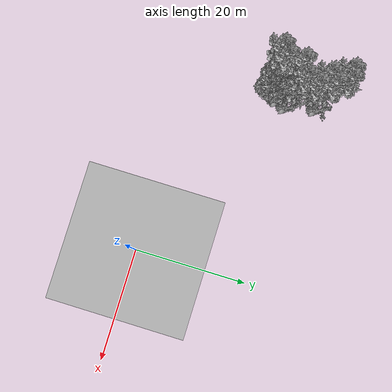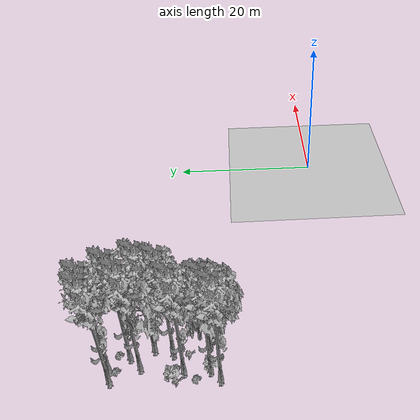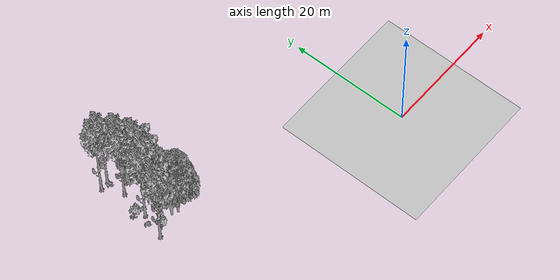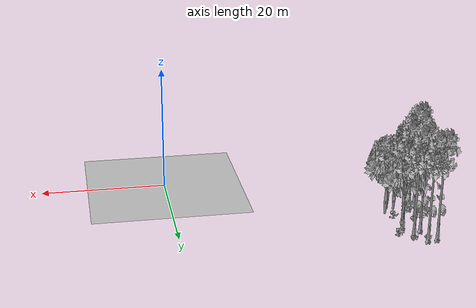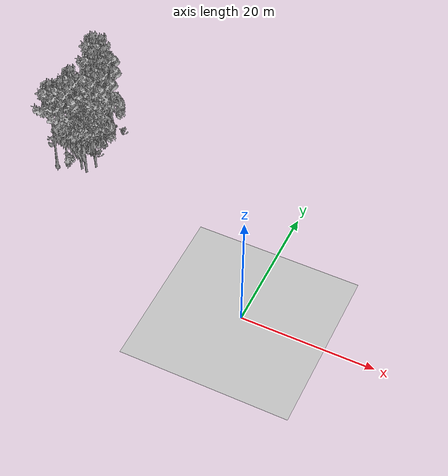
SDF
<sdf version="1.7">
 <world name="default">
  <model name="ground_plane">
   <static>1</static>
   <link name="link">
    <collision name="collision">
     <pose>-50 0 0 0 -0 0</pose>
     <geometry><plane><normal>0 0 1</normal><size>80 80</size></plane></geometry>
     <surface><contact><ode><min_depth>0.01</min_depth><max_vel>0</max_vel></ode></contact></surface>
    </collision>
    <visual name="grass">
     <cast_shadows>0</cast_shadows>
     <geometry>
      <mesh>
       <scale>0.46714285714285714 0.46714285714285714 0.1</scale>
       <uri>file://grass_plane/meshes/grass_plane.dae</uri>
      </mesh>
     </geometry>
    </visual>
   </link>
  </model>
  <model name="Tree 42">
   <static>1</static>
   <pose>-38.2199390331694 14.145118504597612 0 1.57079 -0 0</pose>
   <link name="link">
    <collision name="collision">
     <geometry><mesh><scale>3.5 5 3.5</scale><uri>model://tree_9/meshes/tree_9.obj</uri></mesh></geometry>
    </collision>
    <visual name="visual">
     <geometry><mesh><scale>3.5 5 3.5</scale><uri>model://tree_9/meshes/tree_9.obj</uri></mesh></geometry>
    </visual>
   </link>
  </model>
  <model name="Tree 48">
   <static>1</static>
   <pose>-34.70619468903686 24.176732628721012 0 1.57079 -0 0</pose>
   <link name="link">
    <collision name="collision">
     <geometry><mesh><scale>3.5 5 3.5</scale><uri>model://tree_9/meshes/tree_9.obj</uri></mesh></geometry>
    </collision>
    <visual name="visual">
     <geometry><mesh><scale>3.5 5 3.5</scale><uri>model://tree_9/meshes/tree_9.obj</uri></mesh></geometry>
    </visual>
   </link>
  </model>
  <model name="Tree 149">
   <static>1</static>
   <pose>-33.85662618540042 21.496195428472248 0 1.57079 -0 0</pose>
   <link name="link">
    <collision name="collision">
     <geometry><mesh><scale>3.5 5 3.5</scale><uri>model://tree_2/meshes/tree_2.obj</uri></mesh></geometry>
    </collision>
    <visual name="visual">
     <geometry><mesh><scale>3.5 5 3.5</scale><uri>model://tree_2/meshes/tree_2.obj</uri></mesh></geometry>
    </visual>
   </link>
  </model>
  <model name="Tree 185">
   <static>1</static>
   <pose>-34.52892205460867 15.205348502977216 0 1.57079 -0 0</pose>
   <link name="link">
    <collision name="collision">
     <geometry><mesh><scale>3.5 5 3.5</scale><uri>model://tree_2/meshes/tree_2.obj</uri></mesh></geometry>
    </collision>
    <visual name="visual">
     <geometry><mesh><scale>3.5 5 3.5</scale><uri>model://tree_2/meshes/tree_2.obj</uri></mesh></geometry>
    </visual>
   </link>
  </model>
  <model name="Tree 243">
   <static>1</static>
   <pose>-36.9620809128442 18.14443776985523 0 1.57079 -0 0</pose>
   <link name="link">
    <collision name="collision">
     <geometry><mesh><scale>3.5 5 3.5</scale><uri>model://tree_9/meshes/tree_9.obj</uri></mesh></geometry>
    </collision>
    <visual name="visual">
     <geometry><mesh><scale>3.5 5 3.5</scale><uri>model://tree_9/meshes/tree_9.obj</uri></mesh></geometry>
    </visual>
   </link>
  </model>
  <model name="Tree 245">
   <static>1</static>
   <pose>-32.75634775548255 16.502004955431076 0 1.57079 -0 0</pose>
   <link name="link">
    <collision name="collision">
     <geometry><mesh><scale>3.5 5 3.5</scale><uri>model://tree_2/meshes/tree_2.obj</uri></mesh></geometry>
    </collision>
    <visual name="visual">
     <geometry><mesh><scale>3.5 5 3.5</scale><uri>model://tree_2/meshes/tree_2.obj</uri></mesh></geometry>
    </visual>
   </link>
  </model>
  <model name="Tree 251">
   <static>1</static>
   <pose>-36.16616795311187 26.302607093363207 0 1.57079 -0 0</pose>
   <link name="link">
    <collision name="collision">
     <geometry><mesh><scale>3.5 5 3.5</scale><uri>model://tree_9/meshes/tree_9.obj</uri></mesh></geometry>
    </collision>
    <visual name="visual">
     <geometry><mesh><scale>3.5 5 3.5</scale><uri>model://tree_9/meshes/tree_9.obj</uri></mesh></geometry>
    </visual>
   </link>
  </model>
  <model name="Tree 372">
   <static>1</static>
   <pose>-37.007035276775056 15.246234954153877 0 1.57079 -0 0</pose>
   <link name="link">
    <collision name="collision">
     <geometry><mesh><scale>3.5 5 3.5</scale><uri>model://tree_9/meshes/tree_9.obj</uri></mesh></geometry>
    </collision>
    <visual name="visual">
     <geometry><mesh><scale>3.5 5 3.5</scale><uri>model://tree_9/meshes/tree_9.obj</uri></mesh></geometry>
    </visual>
   </link>
  </model>
  <model name="Tree 411">
   <static>1</static>
   <pose>-36.147518428202474 22.92240803040211 0 1.57079 -0 0</pose>
   <link name="link">
    <collision name="collision">
     <geometry><mesh><scale>3.5 5 3.5</scale><uri>model://tree_9/meshes/tree_9.obj</uri></mesh></geometry>
    </collision>
    <visual name="visual">
     <geometry><mesh><scale>3.5 5 3.5</scale><uri>model://tree_9/meshes/tree_9.obj</uri></mesh></geometry>
    </visual>
   </link>
  </model>
  <model name="Tree 464">
   <static>1</static>
   <pose>-33.83635158160841 21.537578572446414 0 1.57079 -0 0</pose>
   <link name="link">
    <collision name="collision">
     <geometry><mesh><scale>3.5 5 3.5</scale><uri>model://tree_9/meshes/tree_9.obj</uri></mesh></geometry>
    </collision>
    <visual name="visual">
     <geometry><mesh><scale>3.5 5 3.5</scale><uri>model://tree_9/meshes/tree_9.obj</uri></mesh></geometry>
    </visual>
   </link>
  </model>
  <model name="Tree 497">
   <static>1</static>
   <pose>-37.65976335400366 26.078009280690623 0 1.57079 -0 0</pose>
   <link name="link">
    <collision name="collision">
     <geometry><mesh><scale>3.5 5 3.5</scale><uri>model://tree_9/meshes/tree_9.obj</uri></mesh></geometry>
    </collision>
    <visual name="visual">
     <geometry><mesh><scale>3.5 5 3.5</scale><uri>model://tree_9/meshes/tree_9.obj</uri></mesh></geometry>
    </visual>
   </link>
  </model>
  <model name="Tree 523">
   <static>1</static>
   <pose>-34.56488373370526 19.407524779714016 0 1.57079 -0 0</pose>
   <link name="link">
    <collision name="collision">
     <geometry><mesh><scale>3.5 5 3.5</scale><uri>model://tree_9/meshes/tree_9.obj</uri></mesh></geometry>
    </collision>
    <visual name="visual">
     <geometry><mesh><scale>3.5 5 3.5</scale><uri>model://tree_9/meshes/tree_9.obj</uri></mesh></geometry>
    </visual>
   </link>
  </model>
  <model name="Tree 559">
   <static>1</static>
   <pose>-33.53426303545006 14.874545428326478 0 1.57079 -0 0</pose>
   <link name="link">
    <collision name="collision">
     <geometry><mesh><scale>3.5 5 3.5</scale><uri>model://tree_2/meshes/tree_2.obj</uri></mesh></geometry>
    </collision>
    <visual name="visual">
     <geometry><mesh><scale>3.5 5 3.5</scale><uri>model://tree_2/meshes/tree_2.obj</uri></mesh></geometry>
    </visual>
   </link>
  </model>
  <model name="Bush 10">
   <static>1</static>
   <pose>-35.39926072817441 17.67277241986818 0 1.57079 -0 0</pose>
   <link name="link">
    <collision name="collision">
     <geometry><mesh><scale>2 2 2</scale><uri>model://bush_5/meshes/bush_5.obj</uri></mesh></geometry>
     <surface><contact><collide_without_contact>false</collide_without_contact></contact></surface>
    </collision>
    <visual name="visual">
     <geometry><mesh><scale>2 2 2</scale><uri>model://bush_5/meshes/bush_5.obj</uri></mesh></geometry>
    </visual>
   </link>
  </model>
  <model name="Bush 120">
   <static>1</static>
   <pose>-36.50737771172156 19.020649857755444 0 1.57079 -0 0</pose>
   <link name="link">
    <collision name="collision">
     <geometry><mesh><scale>2 2 2</scale><uri>model://bush_2/meshes/bush_2.obj</uri></mesh></geometry>
     <surface><contact><collide_without_contact>false</collide_without_contact></contact></surface>
    </collision>
    <visual name="visual">
     <geometry><mesh><scale>2 2 2</scale><uri>model://bush_2/meshes/bush_2.obj</uri></mesh></geometry>
    </visual>
   </link>
  </model>
  <model name="Bush 330">
   <static>1</static>
   <pose>-37.614152037362004 19.31915807729264 0 1.57079 -0 0</pose>
   <link name="link">
    <collision name="collision">
     <geometry><mesh><scale>2 2 2</scale><uri>model://bush_1/meshes/bush_1.obj</uri></mesh></geometry>
     <surface><contact><collide_without_contact>false</collide_without_contact></contact></surface>
    </collision>
    <visual name="visual">
     <geometry><mesh><scale>2 2 2</scale><uri>model://bush_1/meshes/bush_1.obj</uri></mesh></geometry>
    </visual>
   </link>
  </model>
  <model name="Bush 362">
   <static>1</static>
   <pose>-36.45706158744656 25.4713942481812 0 1.57079 -0 0</pose>
   <link name="link">
    <collision name="collision">
     <geometry><mesh><scale>2 2 2</scale><uri>model://bush_2/meshes/bush_2.obj</uri></mesh></geometry>
     <surface><contact><collide_without_contact>false</collide_without_contact></contact></surface>
    </collision>
    <visual name="visual">
     <geometry><mesh><scale>2 2 2</scale><uri>model://bush_2/meshes/bush_2.obj</uri></mesh></geometry>
    </visual>
   </link>
  </model>
  <model name="Bush 387">
   <static>1</static>
   <pose>-37.976567044678035 16.756107456504836 0 1.57079 -0 0</pose>
   <link name="link">
    <collision name="collision">
     <geometry><mesh><scale>2 2 2</scale><uri>model://bush_2/meshes/bush_2.obj</uri></mesh></geometry>
     <surface><contact><collide_without_contact>false</collide_without_contact></contact></surface>
    </collision>
    <visual name="visual">
     <geometry><mesh><scale>2 2 2</scale><uri>model://bush_2/meshes/bush_2.obj</uri></mesh></geometry>
    </visual>
   </link>
  </model>
  <model name="Bush 439">
   <static>1</static>
   <pose>-32.271170481439086 24.557595244628587 0 1.57079 -0 0</pose>
   <link name="link">
    <collision name="collision">
     <geometry><mesh><scale>2 2 2</scale><uri>model://bush_4/meshes/bush_4.obj</uri></mesh></geometry>
     <surface><contact><collide_without_contact>false</collide_without_contact></contact></surface>
    </collision>
    <visual name="visual">
     <geometry><mesh><scale>2 2 2</scale><uri>model://bush_4/meshes/bush_4.obj</uri></mesh></geometry>
    </visual>
   </link>
  </model>
  <model name="Bush 502">
   <static>1</static>
   <pose>-36.61402296456078 15.119748352997668 0 1.57079 -0 0</pose>
   <link name="link">
    <collision name="collision">
     <geometry><mesh><scale>2 2 2</scale><uri>model://bush_1/meshes/bush_1.obj</uri></mesh></geometry>
     <surface><contact><collide_without_contact>false</collide_without_contact></contact></surface>
    </collision>
    <visual name="visual">
     <geometry><mesh><scale>2 2 2</scale><uri>model://bush_1/meshes/bush_1.obj</uri></mesh></geometry>
    </visual>
   </link>
  </model>
  <model name="Bush 509">
   <static>1</static>
   <pose>-33.36921192202585 18.571129594588527 0 1.57079 -0 0</pose>
   <link name="link">
    <collision name="collision">
     <geometry><mesh><scale>2 2 2</scale><uri>model://bush_4/meshes/bush_4.obj</uri></mesh></geometry>
     <surface><contact><collide_without_contact>false</collide_without_contact></contact></surface>
    </collision>
    <visual name="visual">
     <geometry><mesh><scale>2 2 2</scale><uri>model://bush_4/meshes/bush_4.obj</uri></mesh></geometry>
    </visual>
   </link>
  </model>
  <model name="Bush 580">
   <static>1</static>
   <pose>-38.70810462444604 18.93866917322596 0 1.57079 -0 0</pose>
   <link name="link">
    <collision name="collision">
     <geometry><mesh><scale>2 2 2</scale><uri>model://bush_5/meshes/bush_5.obj</uri></mesh></geometry>
     <surface><contact><collide_without_contact>false</collide_without_contact></contact></surface>
    </collision>
    <visual name="visual">
     <geometry><mesh><scale>2 2 2</scale><uri>model://bush_5/meshes/bush_5.obj</uri></mesh></geometry>
    </visual>
   </link>
  </model>
  <model name="Bush 617">
   <static>1</static>
   <pose>-34.3771747223024 25.388718371864556 0 1.57079 -0 0</pose>
   <link name="link">
    <collision name="collision">
     <geometry><mesh><scale>2 2 2</scale><uri>model://bush_2/meshes/bush_2.obj</uri></mesh></geometry>
     <surface><contact><collide_without_contact>false</collide_without_contact></contact></surface>
    </collision>
    <visual name="visual">
     <geometry><mesh><scale>2 2 2</scale><uri>model://bush_2/meshes/bush_2.obj</uri></mesh></geometry>
    </visual>
   </link>
  </model>
 </world>
</sdf>
